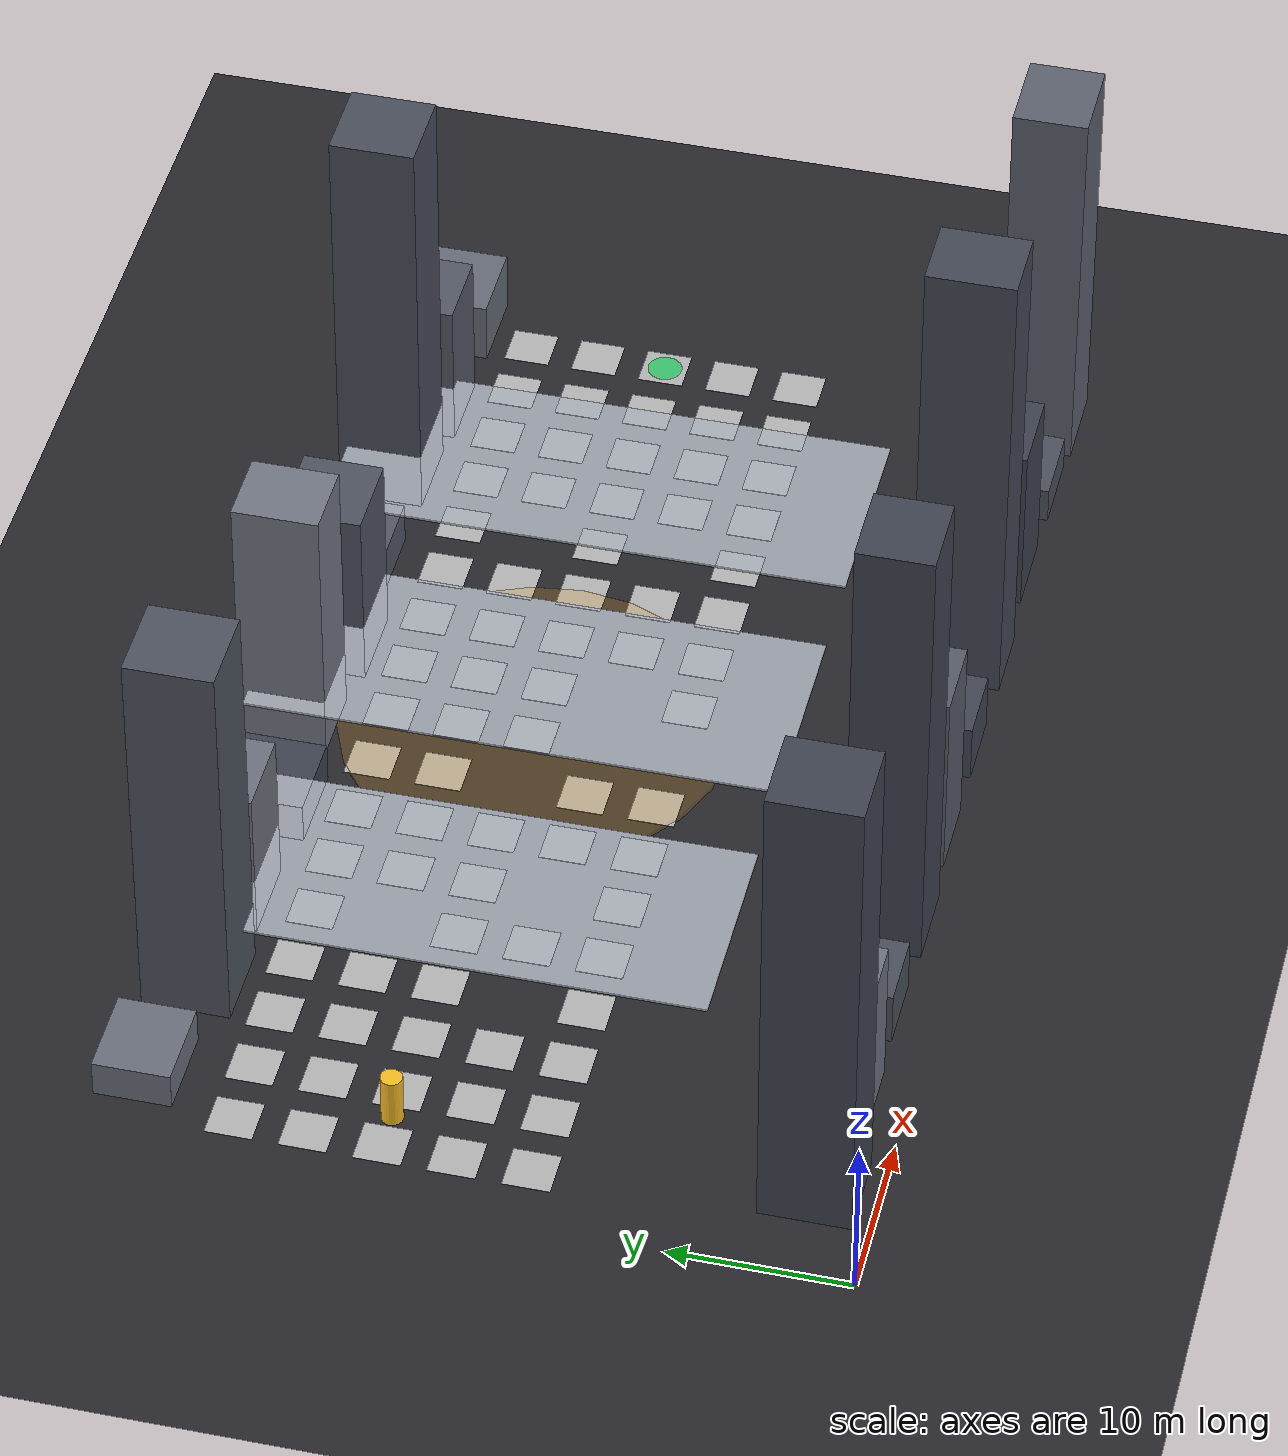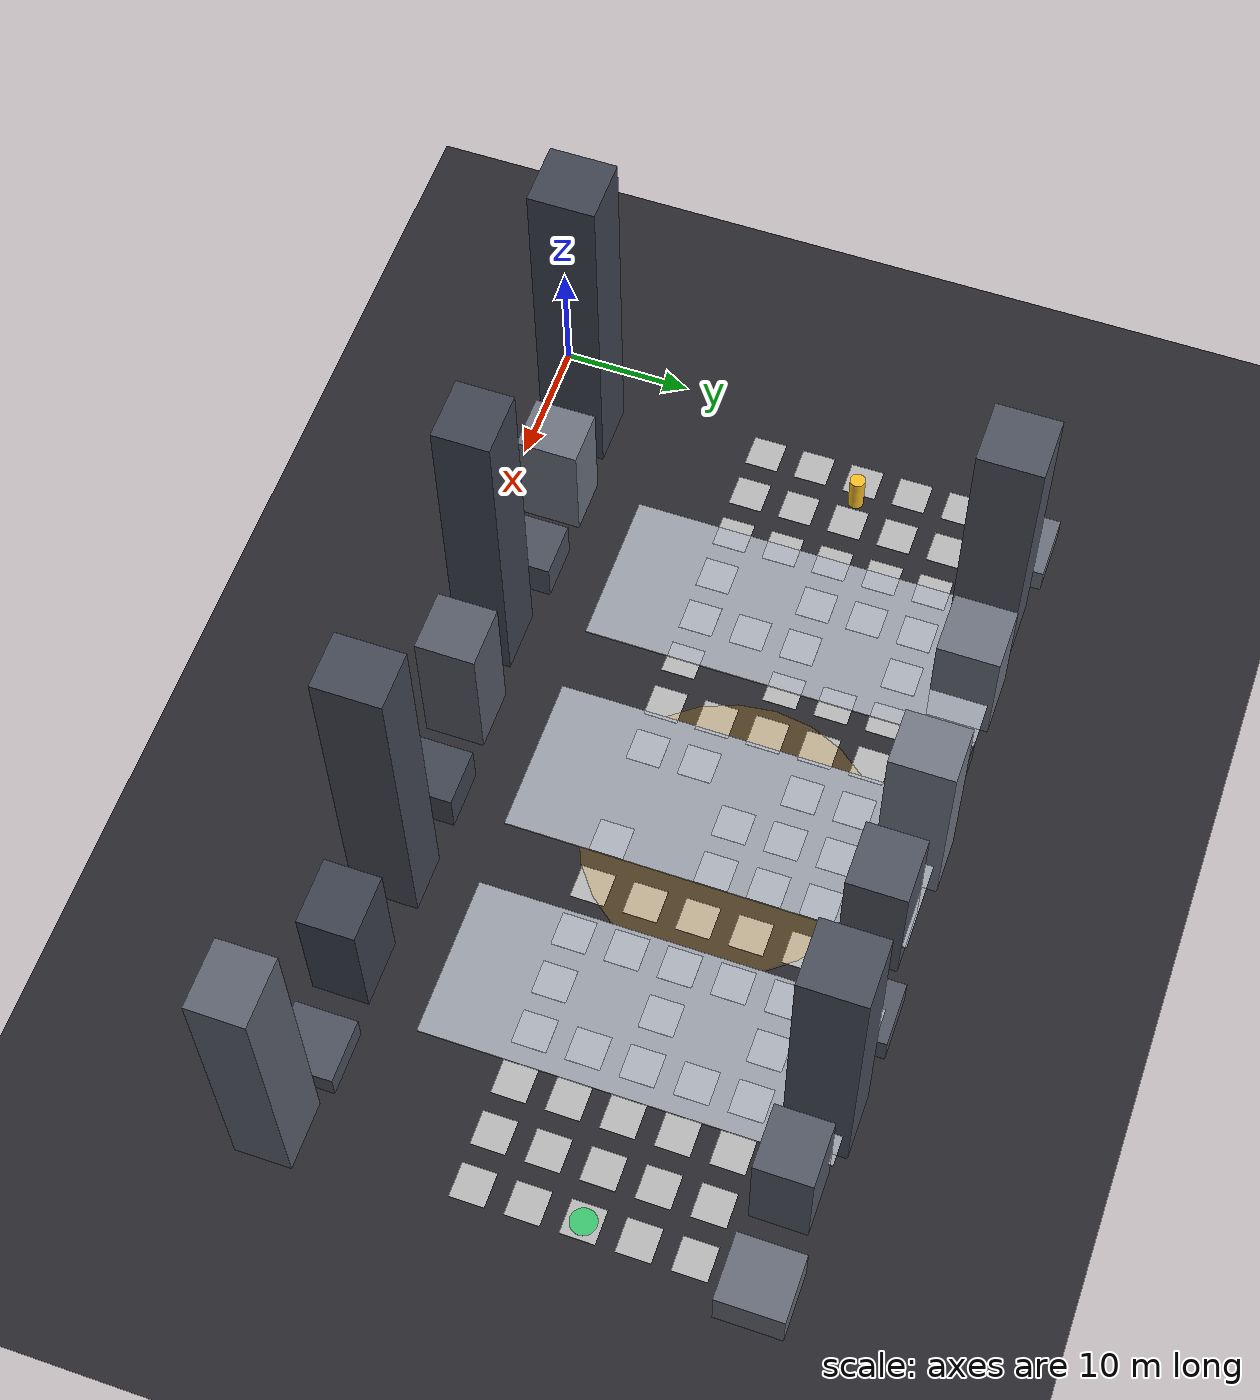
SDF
<sdf version="1.6">
 <world name="metro">
  <gravity>0 0 -9.81</gravity>
  <scene>
   <ambient>0.5 0.52 0.55 1</ambient>
   <background>0.55 0.58 0.64 1</background>
   <shadows>true</shadows>
   <fog>
    <color>0.55 0.58 0.64 1</color>
    <type>linear</type>
    <start>16</start>
    <end>90</end>
    <density>0.05</density>
   </fog>
  </scene>
  <light name="sun" type="directional">
   <pose>0 0 40 0 0 0</pose>
   <diffuse>0.9 0.9 0.9 1</diffuse>
   <specular>0.2 0.2 0.2 1</specular>
   <direction>-0.4 0.3 -0.9</direction>
  </light>
  <model name="ground">
   <static>true</static>
   <link name="link">
    <collision name="c"><geometry><plane><normal>0 0 1</normal><size>400 400</size></plane></geometry></collision>
    <visual name="v">
     <geometry><plane><normal>0 0 1</normal><size>400 400</size></plane></geometry>
     <material><ambient>0.16 0.16 0.18</ambient><diffuse>0.16 0.16 0.18</diffuse></material>
    </visual>
   </link>
  </model>
  <model name="haze0">
   <static>true</static>
   <pose>54.000 26.000 3.60 0 0 0</pose>
   <link name="l">
    <visual name="v">
     <geometry><box><size>12.0 30.0 0.15</size></box></geometry>
     <material><ambient>0.72 0.74 0.78 0.88</ambient><diffuse>0.72 0.74 0.78 0.88</diffuse></material>
     <transparency>0.12</transparency>
    </visual>
   </link>
  </model>
  <model name="haze1">
   <static>true</static>
   <pose>37.000 26.000 3.60 0 0 0</pose>
   <link name="l">
    <visual name="v">
     <geometry><box><size>12.0 30.0 0.15</size></box></geometry>
     <material><ambient>0.72 0.74 0.78 0.88</ambient><diffuse>0.72 0.74 0.78 0.88</diffuse></material>
     <transparency>0.12</transparency>
    </visual>
   </link>
  </model>
  <model name="haze2">
   <static>true</static>
   <pose>20.000 26.000 3.60 0 0 0</pose>
   <link name="l">
    <visual name="v">
     <geometry><box><size>12.0 30.0 0.15</size></box></geometry>
     <material><ambient>0.72 0.74 0.78 0.88</ambient><diffuse>0.72 0.74 0.78 0.88</diffuse></material>
     <transparency>0.12</transparency>
    </visual>
   </link>
  </model>
  <model name="bldg0">
   <static>true</static>
   <pose>6.218 3.510 14.676 0 0 0</pose>
   <link name="l">
    <collision name="c">
     <geometry><box><size>4.8178163488614025 5.041919904550957 29.352804617217437</size></box></geometry>
    </collision>
    <visual name="v">
     <geometry><box><size>4.8178163488614025 5.041919904550957 29.352804617217437</size></box></geometry>
     <material>
      <ambient>0.2500863383934313 0.2700863383934313 0.3200863383934313 1</ambient>
      <diffuse>0.2500863383934313 0.2700863383934313 0.3200863383934313 1</diffuse>
     </material>
    </visual>
   </link>
  </model>
  <model name="bldg2">
   <static>true</static>
   <pose>6.552 39.566 1.083 0 0 0</pose>
   <link name="l">
    <collision name="c">
     <geometry><box><size>5.038362604748543 4.291027501323126 2.165335790783701</size></box></geometry>
    </collision>
    <visual name="v">
     <geometry><box><size>5.038362604748543 4.291027501323126 2.165335790783701</size></box></geometry>
     <material>
      <ambient>0.42267519935323583 0.44267519935323585 0.49267519935323584 1</ambient>
      <diffuse>0.42267519935323583 0.44267519935323585 0.49267519935323584 1</diffuse>
     </material>
    </visual>
   </link>
  </model>
  <model name="bldg4">
   <static>true</static>
   <pose>13.167 4.088 4.533 0 0 0</pose>
   <link name="l">
    <collision name="c">
     <geometry><box><size>4.234056595020687 4.726663375045354 9.06621908043313</size></box></geometry>
    </collision>
    <visual name="v">
     <geometry><box><size>4.234056595020687 4.726663375045354 9.06621908043313</size></box></geometry>
     <material>
      <ambient>0.4355423326109723 0.4555423326109723 0.5055423326109723 1</ambient>
      <diffuse>0.4355423326109723 0.4555423326109723 0.5055423326109723 1</diffuse>
     </material>
    </visual>
   </link>
  </model>
  <model name="bldg6">
   <static>true</static>
   <pose>13.476 38.662 12.085 0 0 0</pose>
   <link name="l">
    <collision name="c">
     <geometry><box><size>4.9188994982210135 4.8994970234278385 24.17092784040281</size></box></geometry>
    </collision>
    <visual name="v">
     <geometry><box><size>4.9188994982210135 4.8994970234278385 24.17092784040281</size></box></geometry>
     <material>
      <ambient>0.30947974100363385 0.32947974100363386 0.37947974100363385 1</ambient>
      <diffuse>0.30947974100363385 0.32947974100363386 0.37947974100363385 1</diffuse>
     </material>
    </visual>
   </link>
  </model>
  <model name="bldg8">
   <static>true</static>
   <pose>19.656 4.141 1.612 0 0 0</pose>
   <link name="l">
    <collision name="c">
     <geometry><box><size>4.24828632949855 4.649066587574559 3.224885922873102</size></box></geometry>
    </collision>
    <visual name="v">
     <geometry><box><size>4.24828632949855 4.649066587574559 3.224885922873102</size></box></geometry>
     <material>
      <ambient>0.2964752350055999 0.31647523500559993 0.3664752350055999 1</ambient>
      <diffuse>0.2964752350055999 0.31647523500559993 0.3664752350055999 1</diffuse>
     </material>
    </visual>
   </link>
  </model>
  <model name="bldg10">
   <static>true</static>
   <pose>20.037 38.969 4.736 0 0 0</pose>
   <link name="l">
    <collision name="c">
     <geometry><box><size>4.776532238571423 4.743627082393472 9.471144860098006</size></box></geometry>
    </collision>
    <visual name="v">
     <geometry><box><size>4.776532238571423 4.743627082393472 9.471144860098006</size></box></geometry>
     <material>
      <ambient>0.43380409382529683 0.45380409382529685 0.5038040938252968 1</ambient>
      <diffuse>0.43380409382529683 0.45380409382529685 0.5038040938252968 1</diffuse>
     </material>
    </visual>
   </link>
  </model>
  <model name="bldg12">
   <static>true</static>
   <pose>26.410 3.733 14.032 0 0 0</pose>
   <link name="l">
    <collision name="c">
     <geometry><box><size>4.763400990042768 4.253994225146048 28.06360151429831</size></box></geometry>
    </collision>
    <visual name="v">
     <geometry><box><size>4.763400990042768 4.253994225146048 28.06360151429831</size></box></geometry>
     <material>
      <ambient>0.2497802253069356 0.26978022530693563 0.3197802253069356 1</ambient>
      <diffuse>0.2497802253069356 0.26978022530693563 0.3197802253069356 1</diffuse>
     </material>
    </visual>
   </link>
  </model>
  <model name="bldg14">
   <static>true</static>
   <pose>27.506 38.449 1.217 0 0 0</pose>
   <link name="l">
    <collision name="c">
     <geometry><box><size>5.049949594911814 4.873429293986511 2.4330402492219925</size></box></geometry>
    </collision>
    <visual name="v">
     <geometry><box><size>5.049949594911814 4.873429293986511 2.4330402492219925</size></box></geometry>
     <material>
      <ambient>0.24392049982607647 0.26392049982607646 0.3139204998260765 1</ambient>
      <diffuse>0.24392049982607647 0.26392049982607646 0.3139204998260765 1</diffuse>
     </material>
    </visual>
   </link>
  </model>
  <model name="bldg16">
   <static>true</static>
   <pose>33.433 4.110 5.889 0 0 0</pose>
   <link name="l">
    <collision name="c">
     <geometry><box><size>4.644552378503688 4.53274596177887 11.778341331601663</size></box></geometry>
    </collision>
    <visual name="v">
     <geometry><box><size>4.644552378503688 4.53274596177887 11.778341331601663</size></box></geometry>
     <material>
      <ambient>0.34385116160556833 0.36385116160556835 0.41385116160556834 1</ambient>
      <diffuse>0.34385116160556833 0.36385116160556835 0.41385116160556834 1</diffuse>
     </material>
    </visual>
   </link>
  </model>
  <model name="bldg18">
   <static>true</static>
   <pose>34.185 39.089 8.296 0 0 0</pose>
   <link name="l">
    <collision name="c">
     <geometry><box><size>4.286288066830987 4.850465319442864 16.592070518867683</size></box></geometry>
    </collision>
    <visual name="v">
     <geometry><box><size>4.286288066830987 4.850465319442864 16.592070518867683</size></box></geometry>
     <material>
      <ambient>0.4546626854497066 0.47466268544970663 0.5246626854497066 1</ambient>
      <diffuse>0.4546626854497066 0.47466268544970663 0.5246626854497066 1</diffuse>
     </material>
    </visual>
   </link>
  </model>
  <model name="bldg20">
   <static>true</static>
   <pose>40.505 4.287 1.744 0 0 0</pose>
   <link name="l">
    <collision name="c">
     <geometry><box><size>4.374412400609226 4.909421883294956 3.488077405412044</size></box></geometry>
    </collision>
    <visual name="v">
     <geometry><box><size>4.374412400609226 4.909421883294956 3.488077405412044</size></box></geometry>
     <material>
      <ambient>0.2537904183831 0.27379041838310003 0.3237904183831 1</ambient>
      <diffuse>0.2537904183831 0.27379041838310003 0.3237904183831 1</diffuse>
     </material>
    </visual>
   </link>
  </model>
  <model name="bldg22">
   <static>true</static>
   <pose>40.831 38.403 5.624 0 0 0</pose>
   <link name="l">
    <collision name="c">
     <geometry><box><size>4.940236052545623 4.530570562748356 11.247732053608136</size></box></geometry>
    </collision>
    <visual name="v">
     <geometry><box><size>4.940236052545623 4.530570562748356 11.247732053608136</size></box></geometry>
     <material>
      <ambient>0.31153624762443 0.33153624762443 0.38153624762443 1</ambient>
      <diffuse>0.31153624762443 0.33153624762443 0.38153624762443 1</diffuse>
     </material>
    </visual>
   </link>
  </model>
  <model name="bldg24">
   <static>true</static>
   <pose>47.699 4.209 14.416 0 0 0</pose>
   <link name="l">
    <collision name="c">
     <geometry><box><size>4.2577795983687565 5.019838535015839 28.83277979706279</size></box></geometry>
    </collision>
    <visual name="v">
     <geometry><box><size>4.2577795983687565 5.019838535015839 28.83277979706279</size></box></geometry>
     <material>
      <ambient>0.2690487524426194 0.2890487524426194 0.3390487524426194 1</ambient>
      <diffuse>0.2690487524426194 0.2890487524426194 0.3390487524426194 1</diffuse>
     </material>
    </visual>
   </link>
  </model>
  <model name="bldg26">
   <static>true</static>
   <pose>47.597 39.340 1.283 0 0 0</pose>
   <link name="l">
    <collision name="c">
     <geometry><box><size>4.7849482925630475 4.889250618280126 2.5659453968141714</size></box></geometry>
    </collision>
    <visual name="v">
     <geometry><box><size>4.7849482925630475 4.889250618280126 2.5659453968141714</size></box></geometry>
     <material>
      <ambient>0.3249235573676594 0.3449235573676594 0.3949235573676594 1</ambient>
      <diffuse>0.3249235573676594 0.3449235573676594 0.3949235573676594 1</diffuse>
     </material>
    </visual>
   </link>
  </model>
  <model name="bldg28">
   <static>true</static>
   <pose>55.417 4.086 5.296 0 0 0</pose>
   <link name="l">
    <collision name="c">
     <geometry><box><size>4.9800870838606945 4.2786841662853 10.591325370483531</size></box></geometry>
    </collision>
    <visual name="v">
     <geometry><box><size>4.9800870838606945 4.2786841662853 10.591325370483531</size></box></geometry>
     <material>
      <ambient>0.24019403127321204 0.26019403127321206 0.31019403127321205 1</ambient>
      <diffuse>0.24019403127321204 0.26019403127321206 0.31019403127321205 1</diffuse>
     </material>
    </visual>
   </link>
  </model>
  <model name="bldg30">
   <static>true</static>
   <pose>55.411 39.113 12.691 0 0 0</pose>
   <link name="l">
    <collision name="c">
     <geometry><box><size>4.851471625262112 4.808354333865187 25.381333769636136</size></box></geometry>
    </collision>
    <visual name="v">
     <geometry><box><size>4.851471625262112 4.808354333865187 25.381333769636136</size></box></geometry>
     <material>
      <ambient>0.2898313270298856 0.30983132702988564 0.35983132702988563 1</ambient>
      <diffuse>0.2898313270298856 0.30983132702988564 0.35983132702988563 1</diffuse>
     </material>
    </visual>
   </link>
  </model>
  <model name="bldg32">
   <static>true</static>
   <pose>62.541 4.184 1.076 0 0 0</pose>
   <link name="l">
    <collision name="c">
     <geometry><box><size>4.75224541661812 4.730418965399912 2.1525293616238512</size></box></geometry>
    </collision>
    <visual name="v">
     <geometry><box><size>4.75224541661812 4.730418965399912 2.1525293616238512</size></box></geometry>
     <material>
      <ambient>0.30267377209231905 0.32267377209231907 0.37267377209231906 1</ambient>
      <diffuse>0.30267377209231905 0.32267377209231907 0.37267377209231906 1</diffuse>
     </material>
    </visual>
   </link>
  </model>
  <model name="bldg34">
   <static>true</static>
   <pose>61.570 38.515 4.568 0 0 0</pose>
   <link name="l">
    <collision name="c">
     <geometry><box><size>4.700424502205831 4.26182479093539 9.136947976528397</size></box></geometry>
    </collision>
    <visual name="v">
     <geometry><box><size>4.700424502205831 4.26182479093539 9.136947976528397</size></box></geometry>
     <material>
      <ambient>0.3323421264291864 0.35234212642918644 0.40234212642918643 1</ambient>
      <diffuse>0.3323421264291864 0.35234212642918644 0.40234212642918643 1</diffuse>
     </material>
    </visual>
   </link>
  </model>
  <model name="bldg36">
   <static>true</static>
   <pose>68.448 3.730 11.987 0 0 0</pose>
   <link name="l">
    <collision name="c">
     <geometry><box><size>5.028063011072422 4.2408031091316145 23.973672966995252</size></box></geometry>
    </collision>
    <visual name="v">
     <geometry><box><size>5.028063011072422 4.2408031091316145 23.973672966995252</size></box></geometry>
     <material>
      <ambient>0.370498070812991 0.39049807081299104 0.440498070812991 1</ambient>
      <diffuse>0.370498070812991 0.39049807081299104 0.440498070812991 1</diffuse>
     </material>
    </visual>
   </link>
  </model>
  <model name="bldg38">
   <static>true</static>
   <pose>68.947 38.822 1.849 0 0 0</pose>
   <link name="l">
    <collision name="c">
     <geometry><box><size>4.926037096433633 5.016523261335779 3.6979701656300117</size></box></geometry>
    </collision>
    <visual name="v">
     <geometry><box><size>4.926037096433633 5.016523261335779 3.6979701656300117</size></box></geometry>
     <material>
      <ambient>0.40714558003112516 0.4271455800311252 0.47714558003112517 1</ambient>
      <diffuse>0.40714558003112516 0.4271455800311252 0.47714558003112517 1</diffuse>
     </material>
    </visual>
   </link>
  </model>
  <model name="hard_patch">
   <static>true</static>
   <pose>37.000 26.000 0.03 0 0 0</pose>
   <link name="l">
    <visual name="v">
     <geometry><cylinder><radius>11.0</radius><length>0.3</length></cylinder></geometry>
     <material><ambient>0.96 0.62 0.04 0.16</ambient><diffuse>0.96 0.62 0.04 0.16</diffuse></material>
    </visual>
   </link>
  </model>
  <model name="aruco0">
   <static>true</static>
   <pose>4.000 18.000 0.02 0 0 0</pose>
   <link name="l">
    <visual name="v">
     <geometry><box><size>2.6 2.6 0.02</size></box></geometry>
     <material>
      <script><uri>file://materials/scripts</uri><uri>file://materials/textures</uri><name>aruco/0</name></script>
     </material>
    </visual>
   </link>
  </model>
  <model name="aruco1">
   <static>true</static>
   <pose>4.000 22.000 0.02 0 0 0</pose>
   <link name="l">
    <visual name="v">
     <geometry><box><size>2.6 2.6 0.02</size></box></geometry>
     <material>
      <script><uri>file://materials/scripts</uri><uri>file://materials/textures</uri><name>aruco/1</name></script>
     </material>
    </visual>
   </link>
  </model>
  <model name="aruco2">
   <static>true</static>
   <pose>4.000 26.000 0.02 0 0 0</pose>
   <link name="l">
    <visual name="v">
     <geometry><box><size>2.6 2.6 0.02</size></box></geometry>
     <material>
      <script><uri>file://materials/scripts</uri><uri>file://materials/textures</uri><name>aruco/2</name></script>
     </material>
    </visual>
   </link>
  </model>
  <model name="aruco3">
   <static>true</static>
   <pose>4.000 30.000 0.02 0 0 0</pose>
   <link name="l">
    <visual name="v">
     <geometry><box><size>2.6 2.6 0.02</size></box></geometry>
     <material>
      <script><uri>file://materials/scripts</uri><uri>file://materials/textures</uri><name>aruco/3</name></script>
     </material>
    </visual>
   </link>
  </model>
  <model name="aruco4">
   <static>true</static>
   <pose>4.000 34.000 0.02 0 0 0</pose>
   <link name="l">
    <visual name="v">
     <geometry><box><size>2.6 2.6 0.02</size></box></geometry>
     <material>
      <script><uri>file://materials/scripts</uri><uri>file://materials/textures</uri><name>aruco/4</name></script>
     </material>
    </visual>
   </link>
  </model>
  <model name="aruco5">
   <static>true</static>
   <pose>8.000 18.000 0.02 0 0 0</pose>
   <link name="l">
    <visual name="v">
     <geometry><box><size>2.6 2.6 0.02</size></box></geometry>
     <material>
      <script><uri>file://materials/scripts</uri><uri>file://materials/textures</uri><name>aruco/5</name></script>
     </material>
    </visual>
   </link>
  </model>
  <model name="aruco6">
   <static>true</static>
   <pose>8.000 22.000 0.02 0 0 0</pose>
   <link name="l">
    <visual name="v">
     <geometry><box><size>2.6 2.6 0.02</size></box></geometry>
     <material>
      <script><uri>file://materials/scripts</uri><uri>file://materials/textures</uri><name>aruco/6</name></script>
     </material>
    </visual>
   </link>
  </model>
  <model name="aruco7">
   <static>true</static>
   <pose>8.000 26.000 0.02 0 0 0</pose>
   <link name="l">
    <visual name="v">
     <geometry><box><size>2.6 2.6 0.02</size></box></geometry>
     <material>
      <script><uri>file://materials/scripts</uri><uri>file://materials/textures</uri><name>aruco/7</name></script>
     </material>
    </visual>
   </link>
  </model>
  <model name="aruco8">
   <static>true</static>
   <pose>8.000 30.000 0.02 0 0 0</pose>
   <link name="l">
    <visual name="v">
     <geometry><box><size>2.6 2.6 0.02</size></box></geometry>
     <material>
      <script><uri>file://materials/scripts</uri><uri>file://materials/textures</uri><name>aruco/8</name></script>
     </material>
    </visual>
   </link>
  </model>
  <model name="aruco9">
   <static>true</static>
   <pose>8.000 34.000 0.02 0 0 0</pose>
   <link name="l">
    <visual name="v">
     <geometry><box><size>2.6 2.6 0.02</size></box></geometry>
     <material>
      <script><uri>file://materials/scripts</uri><uri>file://materials/textures</uri><name>aruco/9</name></script>
     </material>
    </visual>
   </link>
  </model>
  <model name="aruco10">
   <static>true</static>
   <pose>12.000 18.000 0.02 0 0 0</pose>
   <link name="l">
    <visual name="v">
     <geometry><box><size>2.6 2.6 0.02</size></box></geometry>
     <material>
      <script><uri>file://materials/scripts</uri><uri>file://materials/textures</uri><name>aruco/10</name></script>
     </material>
    </visual>
   </link>
  </model>
  <model name="aruco11">
   <static>true</static>
   <pose>12.000 22.000 0.02 0 0 0</pose>
   <link name="l">
    <visual name="v">
     <geometry><box><size>2.6 2.6 0.02</size></box></geometry>
     <material>
      <script><uri>file://materials/scripts</uri><uri>file://materials/textures</uri><name>aruco/11</name></script>
     </material>
    </visual>
   </link>
  </model>
  <model name="aruco12">
   <static>true</static>
   <pose>12.000 26.000 0.02 0 0 0</pose>
   <link name="l">
    <visual name="v">
     <geometry><box><size>2.6 2.6 0.02</size></box></geometry>
     <material>
      <script><uri>file://materials/scripts</uri><uri>file://materials/textures</uri><name>aruco/12</name></script>
     </material>
    </visual>
   </link>
  </model>
  <model name="aruco13">
   <static>true</static>
   <pose>12.000 30.000 0.02 0 0 0</pose>
   <link name="l">
    <visual name="v">
     <geometry><box><size>2.6 2.6 0.02</size></box></geometry>
     <material>
      <script><uri>file://materials/scripts</uri><uri>file://materials/textures</uri><name>aruco/13</name></script>
     </material>
    </visual>
   </link>
  </model>
  <model name="aruco14">
   <static>true</static>
   <pose>12.000 34.000 0.02 0 0 0</pose>
   <link name="l">
    <visual name="v">
     <geometry><box><size>2.6 2.6 0.02</size></box></geometry>
     <material>
      <script><uri>file://materials/scripts</uri><uri>file://materials/textures</uri><name>aruco/14</name></script>
     </material>
    </visual>
   </link>
  </model>
  <model name="aruco15">
   <static>true</static>
   <pose>16.000 18.000 0.02 0 0 0</pose>
   <link name="l">
    <visual name="v">
     <geometry><box><size>2.6 2.6 0.02</size></box></geometry>
     <material>
      <script><uri>file://materials/scripts</uri><uri>file://materials/textures</uri><name>aruco/15</name></script>
     </material>
    </visual>
   </link>
  </model>
  <model name="aruco16">
   <static>true</static>
   <pose>16.000 26.000 0.02 0 0 0</pose>
   <link name="l">
    <visual name="v">
     <geometry><box><size>2.6 2.6 0.02</size></box></geometry>
     <material>
      <script><uri>file://materials/scripts</uri><uri>file://materials/textures</uri><name>aruco/16</name></script>
     </material>
    </visual>
   </link>
  </model>
  <model name="aruco17">
   <static>true</static>
   <pose>16.000 30.000 0.02 0 0 0</pose>
   <link name="l">
    <visual name="v">
     <geometry><box><size>2.6 2.6 0.02</size></box></geometry>
     <material>
      <script><uri>file://materials/scripts</uri><uri>file://materials/textures</uri><name>aruco/17</name></script>
     </material>
    </visual>
   </link>
  </model>
  <model name="aruco18">
   <static>true</static>
   <pose>16.000 34.000 0.02 0 0 0</pose>
   <link name="l">
    <visual name="v">
     <geometry><box><size>2.6 2.6 0.02</size></box></geometry>
     <material>
      <script><uri>file://materials/scripts</uri><uri>file://materials/textures</uri><name>aruco/18</name></script>
     </material>
    </visual>
   </link>
  </model>
  <model name="aruco19">
   <static>true</static>
   <pose>20.000 18.000 0.02 0 0 0</pose>
   <link name="l">
    <visual name="v">
     <geometry><box><size>2.6 2.6 0.02</size></box></geometry>
     <material>
      <script><uri>file://materials/scripts</uri><uri>file://materials/textures</uri><name>aruco/19</name></script>
     </material>
    </visual>
   </link>
  </model>
  <model name="aruco20">
   <static>true</static>
   <pose>20.000 22.000 0.02 0 0 0</pose>
   <link name="l">
    <visual name="v">
     <geometry><box><size>2.6 2.6 0.02</size></box></geometry>
     <material>
      <script><uri>file://materials/scripts</uri><uri>file://materials/textures</uri><name>aruco/20</name></script>
     </material>
    </visual>
   </link>
  </model>
  <model name="aruco21">
   <static>true</static>
   <pose>20.000 26.000 0.02 0 0 0</pose>
   <link name="l">
    <visual name="v">
     <geometry><box><size>2.6 2.6 0.02</size></box></geometry>
     <material>
      <script><uri>file://materials/scripts</uri><uri>file://materials/textures</uri><name>aruco/21</name></script>
     </material>
    </visual>
   </link>
  </model>
  <model name="aruco22">
   <static>true</static>
   <pose>20.000 34.000 0.02 0 0 0</pose>
   <link name="l">
    <visual name="v">
     <geometry><box><size>2.6 2.6 0.02</size></box></geometry>
     <material>
      <script><uri>file://materials/scripts</uri><uri>file://materials/textures</uri><name>aruco/22</name></script>
     </material>
    </visual>
   </link>
  </model>
  <model name="aruco23">
   <static>true</static>
   <pose>24.000 18.000 0.02 0 0 0</pose>
   <link name="l">
    <visual name="v">
     <geometry><box><size>2.6 2.6 0.02</size></box></geometry>
     <material>
      <script><uri>file://materials/scripts</uri><uri>file://materials/textures</uri><name>aruco/23</name></script>
     </material>
    </visual>
   </link>
  </model>
  <model name="aruco24">
   <static>true</static>
   <pose>24.000 26.000 0.02 0 0 0</pose>
   <link name="l">
    <visual name="v">
     <geometry><box><size>2.6 2.6 0.02</size></box></geometry>
     <material>
      <script><uri>file://materials/scripts</uri><uri>file://materials/textures</uri><name>aruco/24</name></script>
     </material>
    </visual>
   </link>
  </model>
  <model name="aruco25">
   <static>true</static>
   <pose>24.000 30.000 0.02 0 0 0</pose>
   <link name="l">
    <visual name="v">
     <geometry><box><size>2.6 2.6 0.02</size></box></geometry>
     <material>
      <script><uri>file://materials/scripts</uri><uri>file://materials/textures</uri><name>aruco/25</name></script>
     </material>
    </visual>
   </link>
  </model>
  <model name="aruco26">
   <static>true</static>
   <pose>24.000 34.000 0.02 0 0 0</pose>
   <link name="l">
    <visual name="v">
     <geometry><box><size>2.6 2.6 0.02</size></box></geometry>
     <material>
      <script><uri>file://materials/scripts</uri><uri>file://materials/textures</uri><name>aruco/26</name></script>
     </material>
    </visual>
   </link>
  </model>
  <model name="aruco27">
   <static>true</static>
   <pose>28.000 18.000 0.02 0 0 0</pose>
   <link name="l">
    <visual name="v">
     <geometry><box><size>2.6 2.6 0.02</size></box></geometry>
     <material>
      <script><uri>file://materials/scripts</uri><uri>file://materials/textures</uri><name>aruco/27</name></script>
     </material>
    </visual>
   </link>
  </model>
  <model name="aruco28">
   <static>true</static>
   <pose>28.000 22.000 0.02 0 0 0</pose>
   <link name="l">
    <visual name="v">
     <geometry><box><size>2.6 2.6 0.02</size></box></geometry>
     <material>
      <script><uri>file://materials/scripts</uri><uri>file://materials/textures</uri><name>aruco/28</name></script>
     </material>
    </visual>
   </link>
  </model>
  <model name="aruco29">
   <static>true</static>
   <pose>28.000 26.000 0.02 0 0 0</pose>
   <link name="l">
    <visual name="v">
     <geometry><box><size>2.6 2.6 0.02</size></box></geometry>
     <material>
      <script><uri>file://materials/scripts</uri><uri>file://materials/textures</uri><name>aruco/29</name></script>
     </material>
    </visual>
   </link>
  </model>
  <model name="aruco30">
   <static>true</static>
   <pose>28.000 30.000 0.02 0 0 0</pose>
   <link name="l">
    <visual name="v">
     <geometry><box><size>2.6 2.6 0.02</size></box></geometry>
     <material>
      <script><uri>file://materials/scripts</uri><uri>file://materials/textures</uri><name>aruco/30</name></script>
     </material>
    </visual>
   </link>
  </model>
  <model name="aruco31">
   <static>true</static>
   <pose>28.000 34.000 0.02 0 0 0</pose>
   <link name="l">
    <visual name="v">
     <geometry><box><size>2.6 2.6 0.02</size></box></geometry>
     <material>
      <script><uri>file://materials/scripts</uri><uri>file://materials/textures</uri><name>aruco/31</name></script>
     </material>
    </visual>
   </link>
  </model>
  <model name="aruco32">
   <static>true</static>
   <pose>32.000 18.000 0.02 0 0 0</pose>
   <link name="l">
    <visual name="v">
     <geometry><box><size>2.6 2.6 0.02</size></box></geometry>
     <material>
      <script><uri>file://materials/scripts</uri><uri>file://materials/textures</uri><name>aruco/32</name></script>
     </material>
    </visual>
   </link>
  </model>
  <model name="aruco33">
   <static>true</static>
   <pose>32.000 22.000 0.02 0 0 0</pose>
   <link name="l">
    <visual name="v">
     <geometry><box><size>2.6 2.6 0.02</size></box></geometry>
     <material>
      <script><uri>file://materials/scripts</uri><uri>file://materials/textures</uri><name>aruco/33</name></script>
     </material>
    </visual>
   </link>
  </model>
  <model name="aruco34">
   <static>true</static>
   <pose>32.000 30.000 0.02 0 0 0</pose>
   <link name="l">
    <visual name="v">
     <geometry><box><size>2.6 2.6 0.02</size></box></geometry>
     <material>
      <script><uri>file://materials/scripts</uri><uri>file://materials/textures</uri><name>aruco/34</name></script>
     </material>
    </visual>
   </link>
  </model>
  <model name="aruco35">
   <static>true</static>
   <pose>32.000 34.000 0.02 0 0 0</pose>
   <link name="l">
    <visual name="v">
     <geometry><box><size>2.6 2.6 0.02</size></box></geometry>
     <material>
      <script><uri>file://materials/scripts</uri><uri>file://materials/textures</uri><name>aruco/35</name></script>
     </material>
    </visual>
   </link>
  </model>
  <model name="aruco36">
   <static>true</static>
   <pose>36.000 26.000 0.02 0 0 0</pose>
   <link name="l">
    <visual name="v">
     <geometry><box><size>2.6 2.6 0.02</size></box></geometry>
     <material>
      <script><uri>file://materials/scripts</uri><uri>file://materials/textures</uri><name>aruco/36</name></script>
     </material>
    </visual>
   </link>
  </model>
  <model name="aruco37">
   <static>true</static>
   <pose>36.000 30.000 0.02 0 0 0</pose>
   <link name="l">
    <visual name="v">
     <geometry><box><size>2.6 2.6 0.02</size></box></geometry>
     <material>
      <script><uri>file://materials/scripts</uri><uri>file://materials/textures</uri><name>aruco/37</name></script>
     </material>
    </visual>
   </link>
  </model>
  <model name="aruco38">
   <static>true</static>
   <pose>36.000 34.000 0.02 0 0 0</pose>
   <link name="l">
    <visual name="v">
     <geometry><box><size>2.6 2.6 0.02</size></box></geometry>
     <material>
      <script><uri>file://materials/scripts</uri><uri>file://materials/textures</uri><name>aruco/38</name></script>
     </material>
    </visual>
   </link>
  </model>
  <model name="aruco39">
   <static>true</static>
   <pose>40.000 18.000 0.02 0 0 0</pose>
   <link name="l">
    <visual name="v">
     <geometry><box><size>2.6 2.6 0.02</size></box></geometry>
     <material>
      <script><uri>file://materials/scripts</uri><uri>file://materials/textures</uri><name>aruco/39</name></script>
     </material>
    </visual>
   </link>
  </model>
  <model name="aruco40">
   <static>true</static>
   <pose>40.000 26.000 0.02 0 0 0</pose>
   <link name="l">
    <visual name="v">
     <geometry><box><size>2.6 2.6 0.02</size></box></geometry>
     <material>
      <script><uri>file://materials/scripts</uri><uri>file://materials/textures</uri><name>aruco/40</name></script>
     </material>
    </visual>
   </link>
  </model>
  <model name="aruco41">
   <static>true</static>
   <pose>40.000 30.000 0.02 0 0 0</pose>
   <link name="l">
    <visual name="v">
     <geometry><box><size>2.6 2.6 0.02</size></box></geometry>
     <material>
      <script><uri>file://materials/scripts</uri><uri>file://materials/textures</uri><name>aruco/41</name></script>
     </material>
    </visual>
   </link>
  </model>
  <model name="aruco42">
   <static>true</static>
   <pose>40.000 34.000 0.02 0 0 0</pose>
   <link name="l">
    <visual name="v">
     <geometry><box><size>2.6 2.6 0.02</size></box></geometry>
     <material>
      <script><uri>file://materials/scripts</uri><uri>file://materials/textures</uri><name>aruco/42</name></script>
     </material>
    </visual>
   </link>
  </model>
  <model name="aruco43">
   <static>true</static>
   <pose>44.000 18.000 0.02 0 0 0</pose>
   <link name="l">
    <visual name="v">
     <geometry><box><size>2.6 2.6 0.02</size></box></geometry>
     <material>
      <script><uri>file://materials/scripts</uri><uri>file://materials/textures</uri><name>aruco/43</name></script>
     </material>
    </visual>
   </link>
  </model>
  <model name="aruco44">
   <static>true</static>
   <pose>44.000 22.000 0.02 0 0 0</pose>
   <link name="l">
    <visual name="v">
     <geometry><box><size>2.6 2.6 0.02</size></box></geometry>
     <material>
      <script><uri>file://materials/scripts</uri><uri>file://materials/textures</uri><name>aruco/44</name></script>
     </material>
    </visual>
   </link>
  </model>
  <model name="aruco45">
   <static>true</static>
   <pose>44.000 26.000 0.02 0 0 0</pose>
   <link name="l">
    <visual name="v">
     <geometry><box><size>2.6 2.6 0.02</size></box></geometry>
     <material>
      <script><uri>file://materials/scripts</uri><uri>file://materials/textures</uri><name>aruco/45</name></script>
     </material>
    </visual>
   </link>
  </model>
  <model name="aruco46">
   <static>true</static>
   <pose>44.000 30.000 0.02 0 0 0</pose>
   <link name="l">
    <visual name="v">
     <geometry><box><size>2.6 2.6 0.02</size></box></geometry>
     <material>
      <script><uri>file://materials/scripts</uri><uri>file://materials/textures</uri><name>aruco/46</name></script>
     </material>
    </visual>
   </link>
  </model>
  <model name="aruco47">
   <static>true</static>
   <pose>44.000 34.000 0.02 0 0 0</pose>
   <link name="l">
    <visual name="v">
     <geometry><box><size>2.6 2.6 0.02</size></box></geometry>
     <material>
      <script><uri>file://materials/scripts</uri><uri>file://materials/textures</uri><name>aruco/47</name></script>
     </material>
    </visual>
   </link>
  </model>
  <model name="aruco48">
   <static>true</static>
   <pose>48.000 18.000 0.02 0 0 0</pose>
   <link name="l">
    <visual name="v">
     <geometry><box><size>2.6 2.6 0.02</size></box></geometry>
     <material>
      <script><uri>file://materials/scripts</uri><uri>file://materials/textures</uri><name>aruco/48</name></script>
     </material>
    </visual>
   </link>
  </model>
  <model name="aruco49">
   <static>true</static>
   <pose>48.000 22.000 0.02 0 0 0</pose>
   <link name="l">
    <visual name="v">
     <geometry><box><size>2.6 2.6 0.02</size></box></geometry>
     <material>
      <script><uri>file://materials/scripts</uri><uri>file://materials/textures</uri><name>aruco/49</name></script>
     </material>
    </visual>
   </link>
  </model>
  <model name="aruco50">
   <static>true</static>
   <pose>48.000 26.000 0.02 0 0 0</pose>
   <link name="l">
    <visual name="v">
     <geometry><box><size>2.6 2.6 0.02</size></box></geometry>
     <material>
      <script><uri>file://materials/scripts</uri><uri>file://materials/textures</uri><name>aruco/50</name></script>
     </material>
    </visual>
   </link>
  </model>
  <model name="aruco51">
   <static>true</static>
   <pose>48.000 30.000 0.02 0 0 0</pose>
   <link name="l">
    <visual name="v">
     <geometry><box><size>2.6 2.6 0.02</size></box></geometry>
     <material>
      <script><uri>file://materials/scripts</uri><uri>file://materials/textures</uri><name>aruco/51</name></script>
     </material>
    </visual>
   </link>
  </model>
  <model name="aruco52">
   <static>true</static>
   <pose>48.000 34.000 0.02 0 0 0</pose>
   <link name="l">
    <visual name="v">
     <geometry><box><size>2.6 2.6 0.02</size></box></geometry>
     <material>
      <script><uri>file://materials/scripts</uri><uri>file://materials/textures</uri><name>aruco/52</name></script>
     </material>
    </visual>
   </link>
  </model>
  <model name="aruco53">
   <static>true</static>
   <pose>52.000 18.000 0.02 0 0 0</pose>
   <link name="l">
    <visual name="v">
     <geometry><box><size>2.6 2.6 0.02</size></box></geometry>
     <material>
      <script><uri>file://materials/scripts</uri><uri>file://materials/textures</uri><name>aruco/53</name></script>
     </material>
    </visual>
   </link>
  </model>
  <model name="aruco54">
   <static>true</static>
   <pose>52.000 26.000 0.02 0 0 0</pose>
   <link name="l">
    <visual name="v">
     <geometry><box><size>2.6 2.6 0.02</size></box></geometry>
     <material>
      <script><uri>file://materials/scripts</uri><uri>file://materials/textures</uri><name>aruco/54</name></script>
     </material>
    </visual>
   </link>
  </model>
  <model name="aruco55">
   <static>true</static>
   <pose>52.000 34.000 0.02 0 0 0</pose>
   <link name="l">
    <visual name="v">
     <geometry><box><size>2.6 2.6 0.02</size></box></geometry>
     <material>
      <script><uri>file://materials/scripts</uri><uri>file://materials/textures</uri><name>aruco/55</name></script>
     </material>
    </visual>
   </link>
  </model>
  <model name="aruco56">
   <static>true</static>
   <pose>56.000 18.000 0.02 0 0 0</pose>
   <link name="l">
    <visual name="v">
     <geometry><box><size>2.6 2.6 0.02</size></box></geometry>
     <material>
      <script><uri>file://materials/scripts</uri><uri>file://materials/textures</uri><name>aruco/56</name></script>
     </material>
    </visual>
   </link>
  </model>
  <model name="aruco57">
   <static>true</static>
   <pose>56.000 22.000 0.02 0 0 0</pose>
   <link name="l">
    <visual name="v">
     <geometry><box><size>2.6 2.6 0.02</size></box></geometry>
     <material>
      <script><uri>file://materials/scripts</uri><uri>file://materials/textures</uri><name>aruco/57</name></script>
     </material>
    </visual>
   </link>
  </model>
  <model name="aruco58">
   <static>true</static>
   <pose>56.000 26.000 0.02 0 0 0</pose>
   <link name="l">
    <visual name="v">
     <geometry><box><size>2.6 2.6 0.02</size></box></geometry>
     <material>
      <script><uri>file://materials/scripts</uri><uri>file://materials/textures</uri><name>aruco/58</name></script>
     </material>
    </visual>
   </link>
  </model>
  <model name="aruco59">
   <static>true</static>
   <pose>56.000 30.000 0.02 0 0 0</pose>
   <link name="l">
    <visual name="v">
     <geometry><box><size>2.6 2.6 0.02</size></box></geometry>
     <material>
      <script><uri>file://materials/scripts</uri><uri>file://materials/textures</uri><name>aruco/59</name></script>
     </material>
    </visual>
   </link>
  </model>
  <model name="aruco60">
   <static>true</static>
   <pose>56.000 34.000 0.02 0 0 0</pose>
   <link name="l">
    <visual name="v">
     <geometry><box><size>2.6 2.6 0.02</size></box></geometry>
     <material>
      <script><uri>file://materials/scripts</uri><uri>file://materials/textures</uri><name>aruco/60</name></script>
     </material>
    </visual>
   </link>
  </model>
  <model name="aruco61">
   <static>true</static>
   <pose>60.000 18.000 0.02 0 0 0</pose>
   <link name="l">
    <visual name="v">
     <geometry><box><size>2.6 2.6 0.02</size></box></geometry>
     <material>
      <script><uri>file://materials/scripts</uri><uri>file://materials/textures</uri><name>aruco/61</name></script>
     </material>
    </visual>
   </link>
  </model>
  <model name="aruco62">
   <static>true</static>
   <pose>60.000 22.000 0.02 0 0 0</pose>
   <link name="l">
    <visual name="v">
     <geometry><box><size>2.6 2.6 0.02</size></box></geometry>
     <material>
      <script><uri>file://materials/scripts</uri><uri>file://materials/textures</uri><name>aruco/62</name></script>
     </material>
    </visual>
   </link>
  </model>
  <model name="aruco63">
   <static>true</static>
   <pose>60.000 26.000 0.02 0 0 0</pose>
   <link name="l">
    <visual name="v">
     <geometry><box><size>2.6 2.6 0.02</size></box></geometry>
     <material>
      <script><uri>file://materials/scripts</uri><uri>file://materials/textures</uri><name>aruco/63</name></script>
     </material>
    </visual>
   </link>
  </model>
  <model name="aruco64">
   <static>true</static>
   <pose>60.000 30.000 0.02 0 0 0</pose>
   <link name="l">
    <visual name="v">
     <geometry><box><size>2.6 2.6 0.02</size></box></geometry>
     <material>
      <script><uri>file://materials/scripts</uri><uri>file://materials/textures</uri><name>aruco/64</name></script>
     </material>
    </visual>
   </link>
  </model>
  <model name="aruco65">
   <static>true</static>
   <pose>60.000 34.000 0.02 0 0 0</pose>
   <link name="l">
    <visual name="v">
     <geometry><box><size>2.6 2.6 0.02</size></box></geometry>
     <material>
      <script><uri>file://materials/scripts</uri><uri>file://materials/textures</uri><name>aruco/65</name></script>
     </material>
    </visual>
   </link>
  </model>
  <model name="aruco66">
   <static>true</static>
   <pose>64.000 18.000 0.02 0 0 0</pose>
   <link name="l">
    <visual name="v">
     <geometry><box><size>2.6 2.6 0.02</size></box></geometry>
     <material>
      <script><uri>file://materials/scripts</uri><uri>file://materials/textures</uri><name>aruco/66</name></script>
     </material>
    </visual>
   </link>
  </model>
  <model name="aruco67">
   <static>true</static>
   <pose>64.000 22.000 0.02 0 0 0</pose>
   <link name="l">
    <visual name="v">
     <geometry><box><size>2.6 2.6 0.02</size></box></geometry>
     <material>
      <script><uri>file://materials/scripts</uri><uri>file://materials/textures</uri><name>aruco/67</name></script>
     </material>
    </visual>
   </link>
  </model>
  <model name="aruco68">
   <static>true</static>
   <pose>64.000 26.000 0.02 0 0 0</pose>
   <link name="l">
    <visual name="v">
     <geometry><box><size>2.6 2.6 0.02</size></box></geometry>
     <material>
      <script><uri>file://materials/scripts</uri><uri>file://materials/textures</uri><name>aruco/68</name></script>
     </material>
    </visual>
   </link>
  </model>
  <model name="aruco69">
   <static>true</static>
   <pose>64.000 30.000 0.02 0 0 0</pose>
   <link name="l">
    <visual name="v">
     <geometry><box><size>2.6 2.6 0.02</size></box></geometry>
     <material>
      <script><uri>file://materials/scripts</uri><uri>file://materials/textures</uri><name>aruco/69</name></script>
     </material>
    </visual>
   </link>
  </model>
  <model name="aruco70">
   <static>true</static>
   <pose>64.000 34.000 0.02 0 0 0</pose>
   <link name="l">
    <visual name="v">
     <geometry><box><size>2.6 2.6 0.02</size></box></geometry>
     <material>
      <script><uri>file://materials/scripts</uri><uri>file://materials/textures</uri><name>aruco/70</name></script>
     </material>
    </visual>
   </link>
  </model>
  <model name="aruco71">
   <static>true</static>
   <pose>68.000 18.000 0.02 0 0 0</pose>
   <link name="l">
    <visual name="v">
     <geometry><box><size>2.6 2.6 0.02</size></box></geometry>
     <material>
      <script><uri>file://materials/scripts</uri><uri>file://materials/textures</uri><name>aruco/71</name></script>
     </material>
    </visual>
   </link>
  </model>
  <model name="aruco72">
   <static>true</static>
   <pose>68.000 22.000 0.02 0 0 0</pose>
   <link name="l">
    <visual name="v">
     <geometry><box><size>2.6 2.6 0.02</size></box></geometry>
     <material>
      <script><uri>file://materials/scripts</uri><uri>file://materials/textures</uri><name>aruco/72</name></script>
     </material>
    </visual>
   </link>
  </model>
  <model name="aruco73">
   <static>true</static>
   <pose>68.000 26.000 0.02 0 0 0</pose>
   <link name="l">
    <visual name="v">
     <geometry><box><size>2.6 2.6 0.02</size></box></geometry>
     <material>
      <script><uri>file://materials/scripts</uri><uri>file://materials/textures</uri><name>aruco/73</name></script>
     </material>
    </visual>
   </link>
  </model>
  <model name="aruco74">
   <static>true</static>
   <pose>68.000 30.000 0.02 0 0 0</pose>
   <link name="l">
    <visual name="v">
     <geometry><box><size>2.6 2.6 0.02</size></box></geometry>
     <material>
      <script><uri>file://materials/scripts</uri><uri>file://materials/textures</uri><name>aruco/74</name></script>
     </material>
    </visual>
   </link>
  </model>
  <model name="aruco75">
   <static>true</static>
   <pose>68.000 34.000 0.02 0 0 0</pose>
   <link name="l">
    <visual name="v">
     <geometry><box><size>2.6 2.6 0.02</size></box></geometry>
     <material>
      <script><uri>file://materials/scripts</uri><uri>file://materials/textures</uri><name>aruco/75</name></script>
     </material>
    </visual>
   </link>
  </model>
  <model name="target_B">
   <static>true</static>
   <pose>6.000 26.000 1.500 0 0 0</pose>
   <link name="l">
    <collision name="c">
     <geometry><cylinder><radius>0.6</radius><length>3.0</length></cylinder></geometry>
    </collision>
    <visual name="v">
     <geometry><cylinder><radius>0.6</radius><length>3.0</length></cylinder></geometry>
     <material><ambient>0.98 0.75 0.14 1</ambient><diffuse>0.98 0.75 0.14 1</diffuse></material>
    </visual>
   </link>
  </model>
  <model name="start_pad">
   <static>true</static>
   <pose>68.000 26.000 0.020 0 0 0</pose>
   <link name="l">
    <collision name="c">
     <geometry><cylinder><radius>1.0</radius><length>0.04</length></cylinder></geometry>
    </collision>
    <visual name="v">
     <geometry><cylinder><radius>1.0</radius><length>0.04</length></cylinder></geometry>
     <material><ambient>0.2 0.83 0.44 0.85</ambient><diffuse>0.2 0.83 0.44 0.85</diffuse></material>
    </visual>
   </link>
  </model>
  <plugin name="gazebo_ros_state" filename="libgazebo_ros_state.so">
   <ros><namespace>/gazebo</namespace></ros>
   <update_rate>0.0</update_rate>
  </plugin>
  <physics name="ode" type="ode">
   <max_step_size>0.004</max_step_size>
   <real_time_update_rate>250</real_time_update_rate>
  </physics>
 </world>
</sdf>
